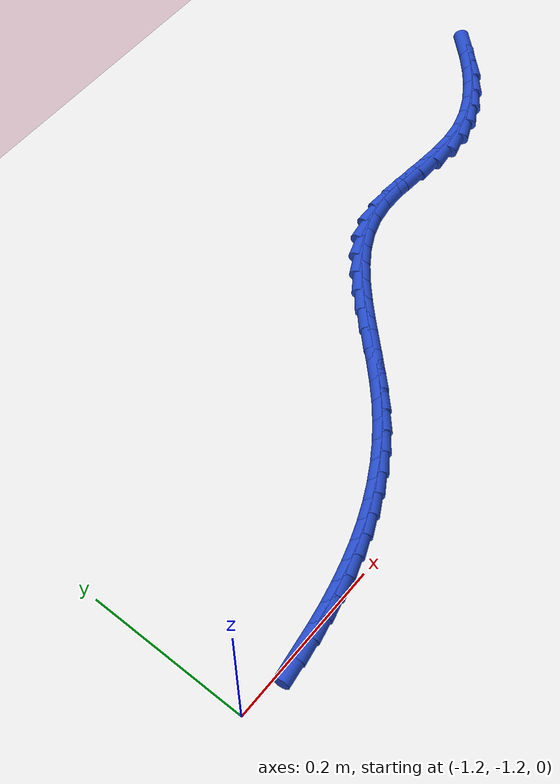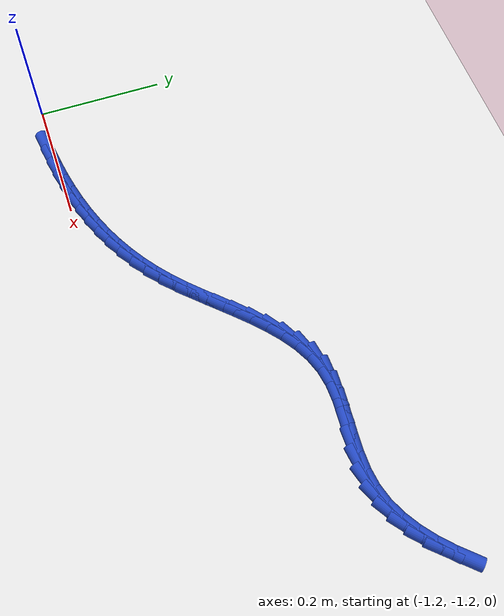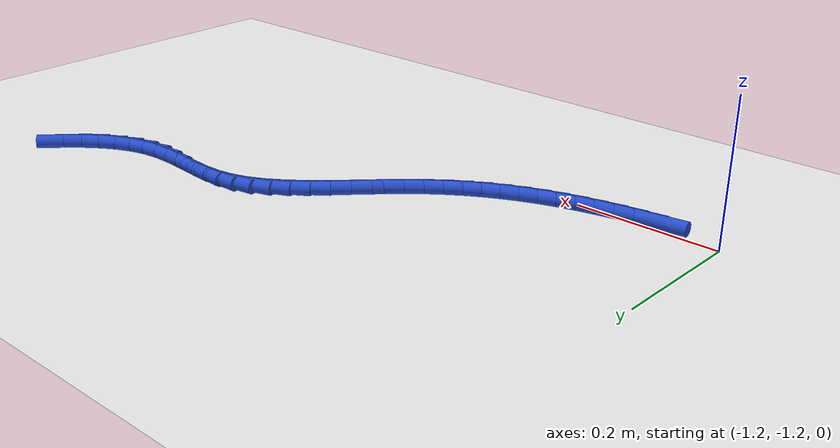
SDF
<sdf version="1.6">
 <world name="default">
  <model name="ground_plane">
   <static>1</static>
   <link name="link">
    <collision name="collision">
     <geometry><plane><normal>0 0 1</normal><size>100 100</size></plane></geometry>
     <surface><friction><ode><mu>100</mu><mu2>50</mu2></ode></friction></surface>
    </collision>
    <visual name="visual">
     <cast_shadows>0</cast_shadows>
     <geometry><plane><normal>0 0 1</normal><size>100 100</size></plane></geometry>
     <material>
      <script><uri>file://media/materials/scripts/gazebo.material</uri><name>Gazebo/WhiteGlow</name></script>
     </material>
    </visual>
   </link>
  </model>
  <model name="line">
   <link name="link_211">
    <pose>-1.1119073632476464 -1.2056262672822948 0.01 0 1.57 0.1404675985703834</pose>
    <collision name="collision">
     <geometry><cylinder><radius>0.01</radius><length>0.08</length></cylinder></geometry>
    </collision>
    <visual name="visual">
     <material>
      <script><name>Gazebo/Blue</name><uri>file://media/materials/scripts/gazebo.material</uri></script>
     </material>
     <geometry><cylinder><radius>0.01</radius><length>0.08</length></cylinder></geometry>
    </visual>
   </link>
   <link name="link_212">
    <pose>-1.084477328721107 -1.2017476930128805 0.01 0 1.57 0.1752172104299345</pose>
    <collision name="collision">
     <geometry><cylinder><radius>0.01</radius><length>0.08</length></cylinder></geometry>
    </collision>
    <visual name="visual">
     <material>
      <script><name>Gazebo/Blue</name><uri>file://media/materials/scripts/gazebo.material</uri></script>
     </material>
     <geometry><cylinder><radius>0.01</radius><length>0.08</length></cylinder></geometry>
    </visual>
   </link>
   <link name="link_213">
    <pose>-1.0577988172955015 -1.1970247260656253 0.01 0 1.57 0.2137922262165957</pose>
    <collision name="collision">
     <geometry><cylinder><radius>0.01</radius><length>0.08</length></cylinder></geometry>
    </collision>
    <visual name="visual">
     <material>
      <script><name>Gazebo/Blue</name><uri>file://media/materials/scripts/gazebo.material</uri></script>
     </material>
     <geometry><cylinder><radius>0.01</radius><length>0.08</length></cylinder></geometry>
    </visual>
   </link>
   <link name="link_214">
    <pose>-1.0318503095493232 -1.1913910409720452 0.01 0 1.57 0.2561605169146572</pose>
    <collision name="collision">
     <geometry><cylinder><radius>0.01</radius><length>0.08</length></cylinder></geometry>
    </collision>
    <visual name="visual">
     <material>
      <script><name>Gazebo/Blue</name><uri>file://media/materials/scripts/gazebo.material</uri></script>
     </material>
     <geometry><cylinder><radius>0.01</radius><length>0.08</length></cylinder></geometry>
    </visual>
   </link>
   <link name="link_215">
    <pose>-1.0066102860610657 -1.1847803122636564 0.01 0 1.57 0.30218963516354164</pose>
    <collision name="collision">
     <geometry><cylinder><radius>0.01</radius><length>0.08</length></cylinder></geometry>
    </collision>
    <visual name="visual">
     <material>
      <script><name>Gazebo/Blue</name><uri>file://media/materials/scripts/gazebo.material</uri></script>
     </material>
     <geometry><cylinder><radius>0.01</radius><length>0.08</length></cylinder></geometry>
    </visual>
   </link>
   <link name="link_216">
    <pose>-0.9820572274092214 -1.177126214471974 0.01 0 1.57 0.3516293193899773</pose>
    <collision name="collision">
     <geometry><cylinder><radius>0.01</radius><length>0.08</length></cylinder></geometry>
    </collision>
    <visual name="visual">
     <material>
      <script><name>Gazebo/Blue</name><uri>file://media/materials/scripts/gazebo.material</uri></script>
     </material>
     <geometry><cylinder><radius>0.01</radius><length>0.08</length></cylinder></geometry>
    </visual>
   </link>
   <link name="link_217">
    <pose>-0.9581696141722836 -1.168362422128515 0.01 0 1.57 0.40410033085521774</pose>
    <collision name="collision">
     <geometry><cylinder><radius>0.01</radius><length>0.08</length></cylinder></geometry>
    </collision>
    <visual name="visual">
     <material>
      <script><name>Gazebo/Blue</name><uri>file://media/materials/scripts/gazebo.material</uri></script>
     </material>
     <geometry><cylinder><radius>0.01</radius><length>0.08</length></cylinder></geometry>
    </visual>
   </link>
   <link name="link_218">
    <pose>-0.9349259269287469 -1.158422609764795 0.01 0 1.57 0.4590935200498692</pose>
    <collision name="collision">
     <geometry><cylinder><radius>0.01</radius><length>0.08</length></cylinder></geometry>
    </collision>
    <visual name="visual">
     <material>
      <script><name>Gazebo/Blue</name><uri>file://media/materials/scripts/gazebo.material</uri></script>
     </material>
     <geometry><cylinder><radius>0.01</radius><length>0.08</length></cylinder></geometry>
    </visual>
   </link>
   <link name="link_219">
    <pose>-0.9123046462571032 -1.1472404519123294 0.01 0 1.57 0.515982218813423</pose>
    <collision name="collision">
     <geometry><cylinder><radius>0.01</radius><length>0.08</length></cylinder></geometry>
    </collision>
    <visual name="visual">
     <material>
      <script><name>Gazebo/Blue</name><uri>file://media/materials/scripts/gazebo.material</uri></script>
     </material>
     <geometry><cylinder><radius>0.01</radius><length>0.08</length></cylinder></geometry>
    </visual>
   </link>
   <link name="link_220">
    <pose>-0.8902842527358462 -1.1347496231026346 0.01 0 1.57 0.5740490289996764</pose>
    <collision name="collision">
     <geometry><cylinder><radius>0.01</radius><length>0.08</length></cylinder></geometry>
    </collision>
    <visual name="visual">
     <material>
      <script><name>Gazebo/Blue</name><uri>file://media/materials/scripts/gazebo.material</uri></script>
     </material>
     <geometry><cylinder><radius>0.01</radius><length>0.08</length></cylinder></geometry>
    </visual>
   </link>
   <link name="link_221">
    <pose>-0.8688432269434693 -1.1208837978672264 0.01 0 1.57 0.632525123395325</pose>
    <collision name="collision">
     <geometry><cylinder><radius>0.01</radius><length>0.08</length></cylinder></geometry>
    </collision>
    <visual name="visual">
     <material>
      <script><name>Gazebo/Blue</name><uri>file://media/materials/scripts/gazebo.material</uri></script>
     </material>
     <geometry><cylinder><radius>0.01</radius><length>0.08</length></cylinder></geometry>
    </visual>
   </link>
   <link name="link_222">
    <pose>-0.8479600494584655 -1.1055766507376208 0.01 0 1.57 0.6906371336625401</pose>
    <collision name="collision">
     <geometry><cylinder><radius>0.01</radius><length>0.08</length></cylinder></geometry>
    </collision>
    <visual name="visual">
     <material>
      <script><name>Gazebo/Blue</name><uri>file://media/materials/scripts/gazebo.material</uri></script>
     </material>
     <geometry><cylinder><radius>0.01</radius><length>0.08</length></cylinder></geometry>
    </visual>
   </link>
   <link name="link_223">
    <pose>-0.827613200859328 -1.0887618562453336 0.01 0 1.57 0.7466667583388354</pose>
    <collision name="collision">
     <geometry><cylinder><radius>0.01</radius><length>0.08</length></cylinder></geometry>
    </collision>
    <visual name="visual">
     <material>
      <script><name>Gazebo/Blue</name><uri>file://media/materials/scripts/gazebo.material</uri></script>
     </material>
     <geometry><cylinder><radius>0.01</radius><length>0.08</length></cylinder></geometry>
    </visual>
   </link>
   <link name="link_224">
    <pose>-0.807773462816977 -1.0704023681620618 0.01 0 1.57 0.7883079931078633</pose>
    <collision name="collision">
     <geometry><cylinder><radius>0.01</radius><length>0.08</length></cylinder></geometry>
    </collision>
    <visual name="visual">
     <material>
      <script><name>Gazebo/Blue</name><uri>file://media/materials/scripts/gazebo.material</uri></script>
     </material>
     <geometry><cylinder><radius>0.01</radius><length>0.08</length></cylinder></geometry>
    </visual>
   </link>
   <link name="link_225">
    <pose>-0.7883146351528704 -1.0508299659450635 0.01 0 1.57 0.8089778522566125</pose>
    <collision name="collision">
     <geometry><cylinder><radius>0.01</radius><length>0.08</length></cylinder></geometry>
    </collision>
    <visual name="visual">
     <material>
      <script><name>Gazebo/Blue</name><uri>file://media/materials/scripts/gazebo.material</uri></script>
     </material>
     <geometry><cylinder><radius>0.01</radius><length>0.08</length></cylinder></geometry>
    </visual>
   </link>
   <link name="link_226">
    <pose>-0.7690442024065782 -1.0306286286068767 0.01 0 1.57 0.8098272276658096</pose>
    <collision name="collision">
     <geometry><cylinder><radius>0.01</radius><length>0.08</length></cylinder></geometry>
    </collision>
    <visual name="visual">
     <material>
      <script><name>Gazebo/Blue</name><uri>file://media/materials/scripts/gazebo.material</uri></script>
     </material>
     <geometry><cylinder><radius>0.01</radius><length>0.08</length></cylinder></geometry>
    </visual>
   </link>
   <link name="link_227">
    <pose>-0.7497683626694341 -1.0103872275719339 0.01 0 1.57 0.7909522999967252</pose>
    <collision name="collision">
     <geometry><cylinder><radius>0.01</radius><length>0.08</length></cylinder></geometry>
    </collision>
    <visual name="visual">
     <material>
      <script><name>Gazebo/Blue</name><uri>file://media/materials/scripts/gazebo.material</uri></script>
     </material>
     <geometry><cylinder><radius>0.01</radius><length>0.08</length></cylinder></geometry>
    </visual>
   </link>
   <link name="link_228">
    <pose>-0.7302933140327691 -0.9906946342646653 0.01 0 1.57 0.7512354145898977</pose>
    <collision name="collision">
     <geometry><cylinder><radius>0.01</radius><length>0.08</length></cylinder></geometry>
    </collision>
    <visual name="visual">
     <material>
      <script><name>Gazebo/Blue</name><uri>file://media/materials/scripts/gazebo.material</uri></script>
     </material>
     <geometry><cylinder><radius>0.01</radius><length>0.08</length></cylinder></geometry>
    </visual>
   </link>
   <link name="link_229">
    <pose>-0.7104252545879154 -0.9721397201095031 0.01 0 1.57 0.6884340492212174</pose>
    <collision name="collision">
     <geometry><cylinder><radius>0.01</radius><length>0.08</length></cylinder></geometry>
    </collision>
    <visual name="visual">
     <material>
      <script><name>Gazebo/Blue</name><uri>file://media/materials/scripts/gazebo.material</uri></script>
     </material>
     <geometry><cylinder><radius>0.01</radius><length>0.08</length></cylinder></geometry>
    </visual>
   </link>
   <link name="link_230">
    <pose>-0.6899703824262051 -0.9553113565308778 0.01 0 1.57 0.5995175067739567</pose>
    <collision name="collision">
     <geometry><cylinder><radius>0.01</radius><length>0.08</length></cylinder></geometry>
    </collision>
    <visual name="visual">
     <material>
      <script><name>Gazebo/Blue</name><uri>file://media/materials/scripts/gazebo.material</uri></script>
     </material>
     <geometry><cylinder><radius>0.01</radius><length>0.08</length></cylinder></geometry>
    </visual>
   </link>
   <link name="link_231">
    <pose>-0.6687348956389705 -0.9407984149532214 0.01 0 1.57 0.4816256962196181</pose>
    <collision name="collision">
     <geometry><cylinder><radius>0.01</radius><length>0.08</length></cylinder></geometry>
    </collision>
    <visual name="visual">
     <material>
      <script><name>Gazebo/Blue</name><uri>file://media/materials/scripts/gazebo.material</uri></script>
     </material>
     <geometry><cylinder><radius>0.01</radius><length>0.08</length></cylinder></geometry>
    </visual>
   </link>
   <link name="link_232">
    <pose>-0.6465249923175433 -0.9291897668009645 0.01 0 1.57 0.33412474726971436</pose>
    <collision name="collision">
     <geometry><cylinder><radius>0.01</radius><length>0.08</length></cylinder></geometry>
    </collision>
    <visual name="visual">
     <material>
      <script><name>Gazebo/Blue</name><uri>file://media/materials/scripts/gazebo.material</uri></script>
     </material>
     <geometry><cylinder><radius>0.01</radius><length>0.08</length></cylinder></geometry>
    </visual>
   </link>
   <link name="link_233">
    <pose>-0.6231468705532558 -0.9210742834985389 0.01 0 1.57 0.16503628220166977</pose>
    <collision name="collision">
     <geometry><cylinder><radius>0.01</radius><length>0.08</length></cylinder></geometry>
    </collision>
    <visual name="visual">
     <material>
      <script><name>Gazebo/Blue</name><uri>file://media/materials/scripts/gazebo.material</uri></script>
     </material>
     <geometry><cylinder><radius>0.01</radius><length>0.08</length></cylinder></geometry>
    </visual>
   </link>
   <link name="link_234">
    <pose>-0.5984331128505355 -0.9169581786945702 0.01 0 1.57 0.026138878100663163</pose>
    <collision name="collision">
     <geometry><cylinder><radius>0.01</radius><length>0.08</length></cylinder></geometry>
    </collision>
    <visual name="visual">
     <material>
      <script><name>Gazebo/Blue</name><uri>file://media/materials/scripts/gazebo.material</uri></script>
     </material>
     <geometry><cylinder><radius>0.01</radius><length>0.08</length></cylinder></geometry>
    </visual>
   </link>
   <link name="link_235">
    <pose>-0.5725565775622442 -0.9162816410065662 0.01 0 1.57 -0.054846029638605916</pose>
    <collision name="collision">
     <geometry><cylinder><radius>0.01</radius><length>0.08</length></cylinder></geometry>
    </collision>
    <visual name="visual">
     <material>
      <script><name>Gazebo/Blue</name><uri>file://media/materials/scripts/gazebo.material</uri></script>
     </material>
     <geometry><cylinder><radius>0.01</radius><length>0.08</length></cylinder></geometry>
    </visual>
   </link>
   <link name="link_236">
    <pose>-0.5459267176402703 -0.9177436493365843 0.01 0 1.57 -0.08450827047337679</pose>
    <collision name="collision">
     <geometry><cylinder><radius>0.01</radius><length>0.08</length></cylinder></geometry>
    </collision>
    <visual name="visual">
     <material>
      <script><name>Gazebo/Blue</name><uri>file://media/materials/scripts/gazebo.material</uri></script>
     </material>
     <geometry><cylinder><radius>0.01</radius><length>0.08</length></cylinder></geometry>
    </visual>
   </link>
   <link name="link_237">
    <pose>-0.5189577718869801 -0.9200281893497886 0.01 0 1.57 -0.06649922868142014</pose>
    <collision name="collision">
     <geometry><cylinder><radius>0.01</radius><length>0.08</length></cylinder></geometry>
    </collision>
    <visual name="visual">
     <material>
      <script><name>Gazebo/Blue</name><uri>file://media/materials/scripts/gazebo.material</uri></script>
     </material>
     <geometry><cylinder><radius>0.01</radius><length>0.08</length></cylinder></geometry>
    </visual>
   </link>
   <link name="link_238">
    <pose>-0.4920639791047404 -0.9218192467113434 0.01 0 1.57 0.0006983541087101165</pose>
    <collision name="collision">
     <geometry><cylinder><radius>0.01</radius><length>0.08</length></cylinder></geometry>
    </collision>
    <visual name="visual">
     <material>
      <script><name>Gazebo/Blue</name><uri>file://media/materials/scripts/gazebo.material</uri></script>
     </material>
     <geometry><cylinder><radius>0.01</radius><length>0.08</length></cylinder></geometry>
    </visual>
   </link>
   <link name="link_239">
    <pose>-0.4656595780959177 -0.9218008070864132 0.01 0 1.57 0.12256040383633868</pose>
    <collision name="collision">
     <geometry><cylinder><radius>0.01</radius><length>0.08</length></cylinder></geometry>
    </collision>
    <visual name="visual">
     <material>
      <script><name>Gazebo/Blue</name><uri>file://media/materials/scripts/gazebo.material</uri></script>
     </material>
     <geometry><cylinder><radius>0.01</radius><length>0.08</length></cylinder></geometry>
    </visual>
   </link>
   <link name="link_240">
    <pose>-0.4401581080786372 -0.918659592734596 0.01 0 1.57 0.28277343886796047</pose>
    <collision name="collision">
     <geometry><cylinder><radius>0.01</radius><length>0.08</length></cylinder></geometry>
    </collision>
    <visual name="visual">
     <material>
      <script><name>Gazebo/Blue</name><uri>file://media/materials/scripts/gazebo.material</uri></script>
     </material>
     <geometry><cylinder><radius>0.01</radius><length>0.08</length></cylinder></geometry>
    </visual>
   </link>
   <link name="link_241">
    <pose>-0.41584220734284016 -0.9115943768311112 0.01 0 1.57 0.43253665006965014</pose>
    <collision name="collision">
     <geometry><cylinder><radius>0.01</radius><length>0.08</length></cylinder></geometry>
    </collision>
    <visual name="visual">
     <material>
      <script><name>Gazebo/Blue</name><uri>file://media/materials/scripts/gazebo.material</uri></script>
     </material>
     <geometry><cylinder><radius>0.01</radius><length>0.08</length></cylinder></geometry>
    </visual>
   </link>
   <link name="link_242">
    <pose>-0.3927105766936049 -0.900914623293567 0.01 0 1.57 0.5618043947765008</pose>
    <collision name="collision">
     <geometry><cylinder><radius>0.01</radius><length>0.08</length></cylinder></geometry>
    </collision>
    <visual name="visual">
     <material>
      <script><name>Gazebo/Blue</name><uri>file://media/materials/scripts/gazebo.material</uri></script>
     </material>
     <geometry><cylinder><radius>0.01</radius><length>0.08</length></cylinder></geometry>
    </visual>
   </link>
   <link name="link_243">
    <pose>-0.370724726046272 -0.8870752772779905 0.01 0 1.57 0.6700843426664982</pose>
    <collision name="collision">
     <geometry><cylinder><radius>0.01</radius><length>0.08</length></cylinder></geometry>
    </collision>
    <visual name="visual">
     <material>
      <script><name>Gazebo/Blue</name><uri>file://media/materials/scripts/gazebo.material</uri></script>
     </material>
     <geometry><cylinder><radius>0.01</radius><length>0.08</length></cylinder></geometry>
    </visual>
   </link>
   <link name="link_244">
    <pose>-0.3498461653161845 -0.8705312839404095 0.01 0 1.57 0.7590836581196188</pose>
    <collision name="collision">
     <geometry><cylinder><radius>0.01</radius><length>0.08</length></cylinder></geometry>
    </collision>
    <visual name="visual">
     <material>
      <script><name>Gazebo/Blue</name><uri>file://media/materials/scripts/gazebo.material</uri></script>
     </material>
     <geometry><cylinder><radius>0.01</radius><length>0.08</length></cylinder></geometry>
    </visual>
   </link>
   <link name="link_245">
    <pose>-0.3300364044186834 -0.8517375884368509 0.01 0 1.57 0.8313170354910081</pose>
    <collision name="collision">
     <geometry><cylinder><radius>0.01</radius><length>0.08</length></cylinder></geometry>
    </collision>
    <visual name="visual">
     <material>
      <script><name>Gazebo/Blue</name><uri>file://media/materials/scripts/gazebo.material</uri></script>
     </material>
     <geometry><cylinder><radius>0.01</radius><length>0.08</length></cylinder></geometry>
    </visual>
   </link>
  </model>
 </world>
</sdf>
